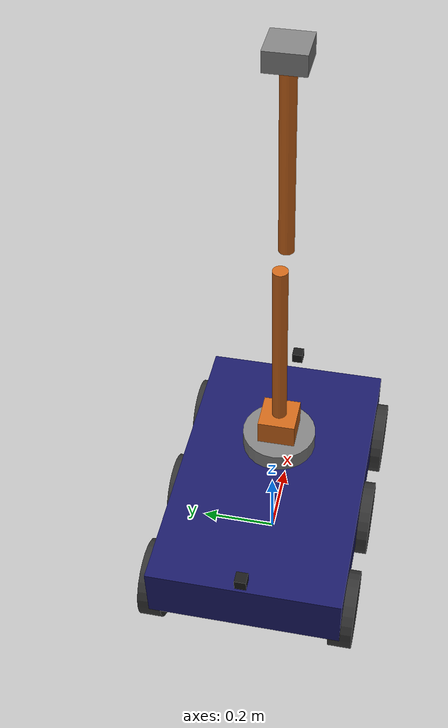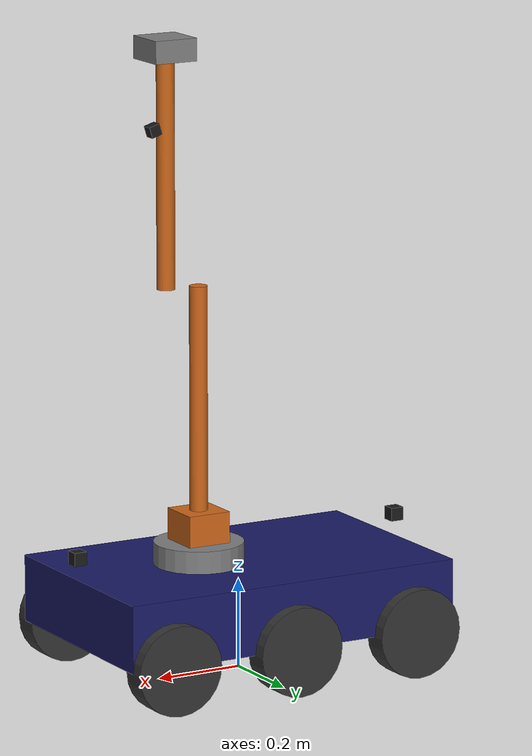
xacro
<?xml version="1.0"?>
<robot xmlns:xacro="http://www.ros.org/wiki/xacro" name="deakin_rover">

  <!-- ros2_control mock toggle — set false for real hardware -->
  <xacro:arg name="use_mock_hardware" default="true"/>

  <!-- ==================== PROPERTIES ==================== -->
  <!-- Chassis dimensions (meters) — HARDWARE UPGRADE: measure real rover -->
  <xacro:property name="chassis_length" value="0.8"/>
  <xacro:property name="chassis_width" value="0.5"/>
  <xacro:property name="chassis_height" value="0.15"/>
  <xacro:property name="chassis_mass" value="15.0"/>

  <!-- Wheel properties -->
  <xacro:property name="wheel_radius" value="0.1"/>
  <xacro:property name="wheel_width" value="0.06"/>
  <xacro:property name="wheel_mass" value="0.5"/>
  <xacro:property name="wheel_separation" value="0.5"/>

  <!-- Wheel positions (from base_link center) -->
  <xacro:property name="front_x" value="0.3"/>
  <xacro:property name="mid_x" value="0.0"/>
  <xacro:property name="rear_x" value="-0.3"/>

  <!-- Arm link lengths (meters) — matches arm.urdf reference design -->
  <xacro:property name="arm_base_height" value="0.05"/>
  <xacro:property name="upper_arm_length" value="0.5"/>
  <xacro:property name="forearm_length" value="0.5"/>

  <!-- ==================== MACROS ==================== -->

  <!-- Inertia for a box -->
  <xacro:macro name="box_inertia" params="mass x y z">
    <inertial>
      <mass value="${mass}"/>
      <inertia ixx="${mass*(y*y+z*z)/12}" ixy="0" ixz="0"
               iyy="${mass*(x*x+z*z)/12}" iyz="0"
               izz="${mass*(x*x+y*y)/12}"/>
    </inertial>
  </xacro:macro>

  <!-- Inertia for a cylinder -->
  <xacro:macro name="cylinder_inertia" params="mass r l">
    <inertial>
      <mass value="${mass}"/>
      <inertia ixx="${mass*(3*r*r+l*l)/12}" ixy="0" ixz="0"
               iyy="${mass*(3*r*r+l*l)/12}" iyz="0"
               izz="${mass*r*r/2}"/>
    </inertial>
  </xacro:macro>

  <!-- Wheel macro -->
  <xacro:macro name="wheel" params="name x y">
    <link name="${name}">
      <visual>
        <geometry><cylinder radius="${wheel_radius}" length="${wheel_width}"/></geometry>
        <material name="dark_grey"><color rgba="0.2 0.2 0.2 1"/></material>
      </visual>
      <collision>
        <geometry><cylinder radius="${wheel_radius}" length="${wheel_width}"/></geometry>
      </collision>
      <xacro:cylinder_inertia mass="${wheel_mass}" r="${wheel_radius}" l="${wheel_width}"/>
    </link>
    <joint name="${name}_joint" type="continuous">
      <parent link="base_link"/>
      <child link="${name}"/>
      <origin xyz="${x} ${y} 0" rpy="${-pi/2} 0 0"/>
      <axis xyz="0 0 1"/>
    </joint>
  </xacro:macro>

  <!-- ==================== BASE ==================== -->

  <link name="base_footprint"/>

  <link name="base_link">
    <visual>
      <geometry><box size="${chassis_length} ${chassis_width} ${chassis_height}"/></geometry>
      <origin xyz="0 0 ${chassis_height/2}"/>
      <material name="blue"><color rgba="0.1 0.1 0.4 1"/></material>
    </visual>
    <collision>
      <geometry><box size="${chassis_length} ${chassis_width} ${chassis_height}"/></geometry>
      <origin xyz="0 0 ${chassis_height/2}"/>
    </collision>
    <xacro:box_inertia mass="${chassis_mass}" x="${chassis_length}" y="${chassis_width}" z="${chassis_height}"/>
  </link>

  <joint name="base_footprint_joint" type="fixed">
    <parent link="base_footprint"/>
    <child link="base_link"/>
    <origin xyz="0 0 ${wheel_radius}"/>
  </joint>

  <!-- ==================== WHEELS ==================== -->

  <xacro:wheel name="left_front_wheel"  x="${front_x}" y="${wheel_separation/2}"/>
  <xacro:wheel name="left_mid_wheel"    x="${mid_x}"   y="${wheel_separation/2}"/>
  <xacro:wheel name="left_rear_wheel"   x="${rear_x}"  y="${wheel_separation/2}"/>
  <xacro:wheel name="right_front_wheel" x="${front_x}" y="${-wheel_separation/2}"/>
  <xacro:wheel name="right_mid_wheel"   x="${mid_x}"   y="${-wheel_separation/2}"/>
  <xacro:wheel name="right_rear_wheel"  x="${rear_x}"  y="${-wheel_separation/2}"/>

  <!-- ==================== ROS2_CONTROL ==================== -->
  <ros2_control name="rover_drive" type="system">
    <hardware>
      <plugin>rover_drive_hardware/RoverDriveHardware</plugin>
      <param name="serial_port">/dev/ttyUSB0</param>   <!-- HARDWARE UPGRADE: verify with dmesg -->
      <param name="baud_rate">9600</param>              <!-- HARDWARE UPGRADE: can increase to 115200 -->
      <param name="max_rpm">3000</param>                <!-- BLD-3055 datasheet limit -->
      <param name="use_mock">$(arg use_mock_hardware)</param>
    </hardware>

    <joint name="left_front_wheel_joint">
      <command_interface name="velocity"/>
      <state_interface name="velocity"/>
      <state_interface name="position"/>
    </joint>
    <joint name="left_mid_wheel_joint">
      <command_interface name="velocity"/>
      <state_interface name="velocity"/>
      <state_interface name="position"/>
    </joint>
    <joint name="left_rear_wheel_joint">
      <command_interface name="velocity"/>
      <state_interface name="velocity"/>
      <state_interface name="position"/>
    </joint>
    <joint name="right_front_wheel_joint">
      <command_interface name="velocity"/>
      <state_interface name="velocity"/>
      <state_interface name="position"/>
    </joint>
    <joint name="right_mid_wheel_joint">
      <command_interface name="velocity"/>
      <state_interface name="velocity"/>
      <state_interface name="position"/>
    </joint>
    <joint name="right_rear_wheel_joint">
      <command_interface name="velocity"/>
      <state_interface name="velocity"/>
      <state_interface name="position"/>
    </joint>
  </ros2_control>

  <!-- ==================== ARM ==================== -->

  <!-- Base plate (flat cylinder, matches arm.urdf base_link) -->
  <link name="arm_base_link">
    <visual>
      <origin xyz="0 0 ${arm_base_height/2}" rpy="0 0 0"/>
      <geometry><cylinder radius="0.1" length="${arm_base_height}"/></geometry>
      <material name="grey"><color rgba="0.5 0.5 0.5 1"/></material>
    </visual>
    <collision>
      <origin xyz="0 0 ${arm_base_height/2}" rpy="0 0 0"/>
      <geometry><cylinder radius="0.1" length="${arm_base_height}"/></geometry>
    </collision>
    <xacro:cylinder_inertia mass="1.0" r="0.1" l="${arm_base_height}"/>
  </link>

  <joint name="arm_base_joint" type="fixed">
    <parent link="base_link"/>
    <child link="arm_base_link"/>
    <origin xyz="0.1 0 ${chassis_height}"/>
  </joint>

  <!-- Rotating base block (matches arm.urdf base_rot) -->
  <link name="shoulder_link">
    <visual>
      <origin xyz="0 0 0.035" rpy="0 0 0"/>
      <geometry><box size="0.1 0.1 0.07"/></geometry>
      <material name="orange"><color rgba="0.8 0.4 0.1 1"/></material>
    </visual>
    <collision>
      <origin xyz="0 0 0.035" rpy="0 0 0"/>
      <geometry><box size="0.1 0.1 0.07"/></geometry>
    </collision>
    <xacro:box_inertia mass="0.5" x="0.1" y="0.1" z="0.07"/>
  </link>
  <joint name="base_yaw" type="revolute">
    <parent link="arm_base_link"/>
    <child link="shoulder_link"/>
    <origin xyz="0 0 ${arm_base_height}" rpy="0 0 0"/>
    <axis xyz="0 0 -1"/>
    <limit lower="-6.28" upper="6.28" effort="10.0" velocity="1.0"/>
  </joint>

  <!-- Upper arm (matches arm.urdf arm1) -->
  <link name="upper_arm_link">
    <visual>
      <origin xyz="0 0 ${upper_arm_length/2}" rpy="0 0 0"/>
      <geometry><cylinder length="${upper_arm_length}" radius="0.02"/></geometry>
      <material name="orange"/>
    </visual>
    <collision>
      <origin xyz="0 0 ${upper_arm_length/2}" rpy="0 0 0"/>
      <geometry><cylinder length="${upper_arm_length}" radius="0.02"/></geometry>
    </collision>
    <xacro:cylinder_inertia mass="0.3" r="0.02" l="${upper_arm_length}"/>
  </link>
  <joint name="shoulder_pitch" type="revolute">
    <parent link="shoulder_link"/>
    <child link="upper_arm_link"/>
    <origin xyz="0 0 0.07" rpy="0 0 0"/>
    <axis xyz="1 0 0"/>
    <limit lower="-1.57" upper="1.57" effort="10.0" velocity="1.0"/>
  </joint>

  <!-- Forearm (matches arm.urdf arm2) -->
  <link name="forearm_link">
    <visual>
      <origin xyz="0 0 ${forearm_length/2}" rpy="0 0 0"/>
      <geometry><cylinder length="${forearm_length}" radius="0.02"/></geometry>
      <material name="orange"/>
    </visual>
    <collision>
      <origin xyz="0 0 ${forearm_length/2}" rpy="0 0 0"/>
      <geometry><cylinder length="${forearm_length}" radius="0.02"/></geometry>
    </collision>
    <xacro:cylinder_inertia mass="0.3" r="0.02" l="${forearm_length}"/>
  </link>
  <joint name="elbow_pitch" type="revolute">
    <parent link="upper_arm_link"/>
    <child link="forearm_link"/>
    <origin xyz="0.08 0 ${upper_arm_length}" rpy="0 0 0"/>
    <axis xyz="1 0 0"/>
    <limit lower="-3.14" upper="3.14" effort="10.0" velocity="1.0"/>
  </joint>

  <!-- End effector (matches arm.urdf ee_link) -->
  <link name="gripper_link">
    <visual>
      <origin xyz="0 0 0.025" rpy="0 0 0"/>
      <geometry><box size="0.1 0.1 0.05"/></geometry>
      <material name="grey"/>
    </visual>
    <collision>
      <origin xyz="0 0 0.025" rpy="0 0 0"/>
      <geometry><box size="0.1 0.1 0.05"/></geometry>
    </collision>
    <xacro:box_inertia mass="0.2" x="0.1" y="0.1" z="0.05"/>
  </link>
  <joint name="gripper" type="fixed">
    <parent link="forearm_link"/>
    <child link="gripper_link"/>
    <origin xyz="0 0 ${forearm_length}" rpy="0 0 0"/>
  </joint>

  <!-- ==================== CAMERAS ==================== -->

  <!-- Front camera -->
  <link name="camera1_link">
    <visual>
      <geometry><box size="0.03 0.03 0.03"/></geometry>
      <material name="black"><color rgba="0.1 0.1 0.1 1"/></material>
    </visual>
  </link>
  <joint name="camera1_joint" type="fixed">
    <parent link="base_link"/>
    <child link="camera1_link"/>
    <origin xyz="${chassis_length/2} 0 ${chassis_height + 0.05}" rpy="0 0 0"/>
  </joint>

  <!-- Rear camera -->
  <link name="camera2_link">
    <visual>
      <geometry><box size="0.03 0.03 0.03"/></geometry>
      <material name="black"/>
    </visual>
  </link>
  <joint name="camera2_joint" type="fixed">
    <parent link="base_link"/>
    <child link="camera2_link"/>
    <origin xyz="${-chassis_length/2} 0 ${chassis_height + 0.05}" rpy="0 0 3.14159"/>
  </joint>

  <!-- Arm camera (mounted on forearm) -->
  <link name="camera3_link">
    <visual>
      <geometry><box size="0.025 0.025 0.025"/></geometry>
      <material name="black"/>
    </visual>
  </link>
  <joint name="camera3_joint" type="fixed">
    <parent link="forearm_link"/>
    <child link="camera3_link"/>
    <origin xyz="0.03 0 ${forearm_length * 0.7}" rpy="0 0.3 0"/>
  </joint>

</robot>
